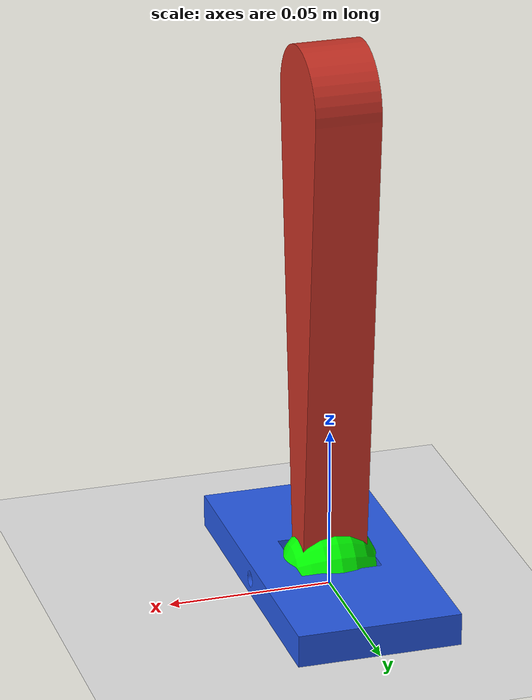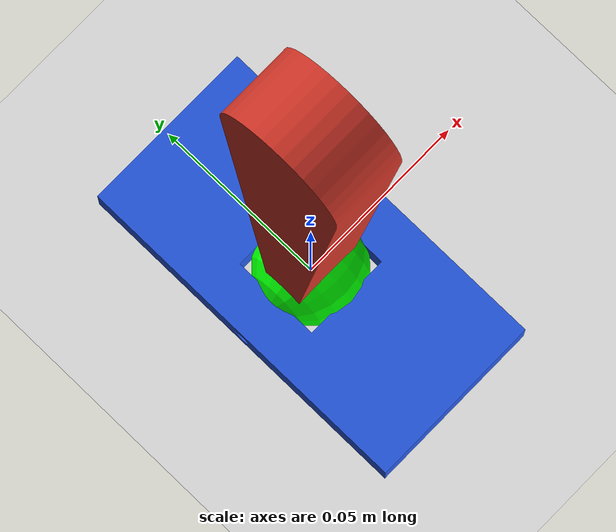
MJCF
<mujoco model="calf_foot_hinge">
    <compiler angle="degree" autolimits="true"/>
    <option gravity="0 0 -10" timestep="0.002"/>

    <asset>
        <!-- SolidWorks 导出的 STL 使用 mm，这里统一缩放到 MuJoCo 的 m -->
        <mesh name="calf_mesh" file="calf.STL" scale="0.001 0.001 0.001"/>
        <mesh name="foot_mesh" file="foot.STL" scale="0.001 0.001 0.001"/>
    </asset>

    <worldbody>
        <light diffuse=".5 .5 .5" pos="0 0 3" dir="0 0 -1"/>
        <geom type="plane" size="5 5 0.1" rgba=".9 .9 .9 1"/>

        <!-- calf 的 STL 长轴是 SolidWorks 的 X 轴；这里把 calf 局部 +X 方向转到竖直向下 -->
        <body name="calf" pos="0 0 0.155" euler="0 90 0">
            <freejoint/>
            <geom name="calf_geom" type="mesh" mesh="calf_mesh" rgba="0.8 0.2 0.15 1" mass="1"/>

            <!--
                foot body 原点放在 calf 局部坐标 x=150mm 处。
                hinge joint 的 pos="0 0 0" 表示关节轴经过 foot body 原点；
                当前 foot mesh 未设置 pos，因此 foot.STL 的原始 (0,0,0) 对齐在这个点。
            -->
            <body name="foot" pos="0.15 0 0" euler="0 0 90">
                <joint name="ankle_hinge" type="hinge" pos="0 0 0" axis="0 0 1" damping="0.05"/>
                <!-- 当前装配姿态下，foot 局部 Z 轴对应小腿前后摆动的踝关节轴 -->
                <geom name="foot_geom" type="mesh" mesh="foot_mesh" rgba="0.15 0.35 0.9 1" mass="0.5"/>

                <site name="hinge_origin" pos="0 0 0" type="sphere" size="0.015" rgba="0 1 0 1"/>
            </body>
        </body>
    </worldbody>
</mujoco>
